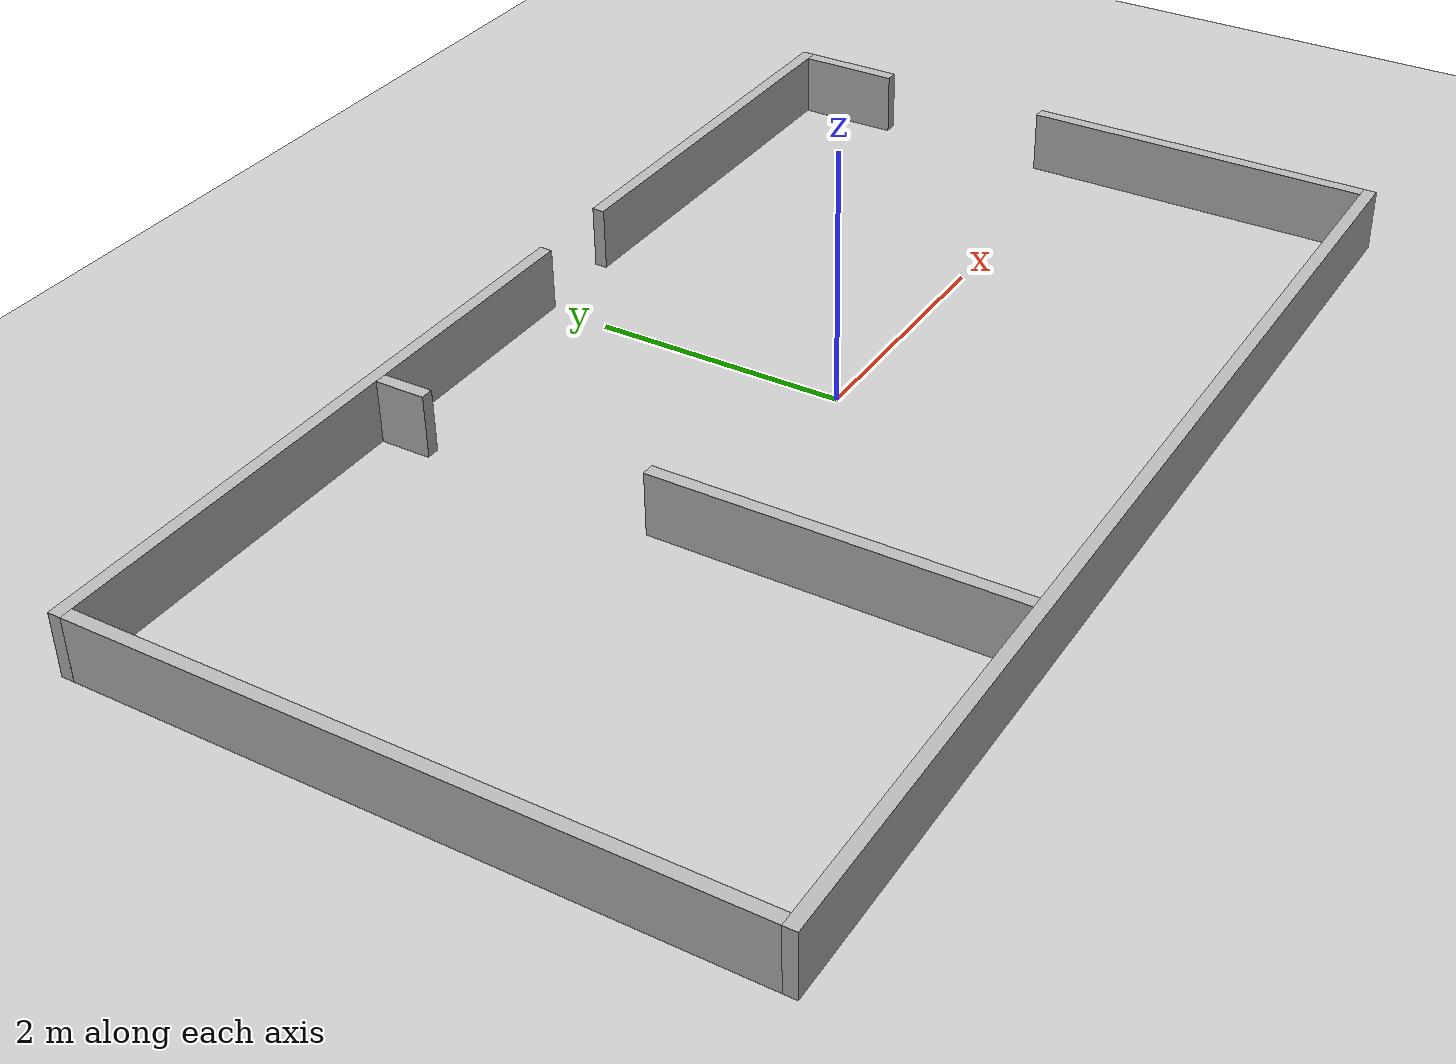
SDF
<?xml version="1.0" ?>
<sdf version="1.4">
  <world name="default">
    <include>
      <uri>model://sun</uri>
    </include>

    <physics type='ode'>
      <max_step_size>0.0002</max_step_size> <!-- time it takes per simulation step -->
      <real_time_factor>1</real_time_factor>
      <real_time_update_rate>1000</real_time_update_rate>
      <gravity>0 0 -9.8</gravity>
    </physics>

    <scene>
      <grid>false</grid>
    </scene>

    <model name='ground_plane'>
      <static>1</static>
      <link name='link'>
        <pose>-0.5 0 0 0 0 0</pose>
        <collision name='collision'>
          <geometry>
            <plane>
              <normal>0 0 1</normal>
              <size>10 5</size>
            </plane>
          </geometry>
          <surface>
            <friction>
              <ode>
                <mu>100</mu>
                <mu2>50</mu2>
              </ode>
            </friction>
            <bounce/>
            <contact>
              <ode/>
            </contact>
          </surface>
          <max_contacts>10</max_contacts>
        </collision>
        <visual name='visual'>
          <cast_shadows>0</cast_shadows>
          <geometry>
            <plane>
              <normal>0 0 1</normal>
              <size>9 5</size>
            </plane>
          </geometry>
          <material>
            <script>
              <uri>file://media/materials/scripts/gazebo.material</uri>
              <name>Gazebo/Grey</name>
            </script>
          </material>
        </visual>
        <velocity_decay>
          <linear>0</linear>
          <angular>0</angular>
        </velocity_decay>
        <self_collide>0</self_collide>
        <kinematic>0</kinematic>
        <gravity>1</gravity>
      </link>
    </model>

    <model name='walls'>
      <pose>0 0 0 0 0 0</pose>
      <link name='wall0'>
        <pose>-5 0 0.25 0 0 0</pose>
        <visual name='visual'>
          <geometry>
            <box>
              <size>0.1 5 0.5</size>
            </box>
          </geometry>
          <material>
            <script>
              <uri>file://media/materials/scripts/gazebo.material</uri>
              <name>Gazebo/Skull</name>
            </script>
          </material>
        </visual>
      </link>
      <link name='wall1a'>
        <pose>4 2.1 0.25 0 0 0</pose>
        <visual name='visual'>
          <geometry>
            <box>
              <size>0.1 0.8 0.5</size>
            </box>
          </geometry>
          <material>
            <script>
              <uri>file://media/materials/scripts/gazebo.material</uri>
              <name>Gazebo/Skull</name>
            </script>
          </material>
        </visual>
      </link>
      <link name='wall1b'>
        <pose>4 -1.1 0.25 0 0 0</pose>
        <visual name='visual'>
          <geometry>
            <box>
              <size>0.1 2.8 0.5</size>
            </box>
          </geometry>
          <material>
            <script>
              <uri>file://media/materials/scripts/gazebo.material</uri>
              <name>Gazebo/Skull</name>
            </script>
          </material>
        </visual>
      </link>
      <link name='wall2a'>
        <pose>-2.5 2.55 0.25 0 0 1.57075</pose>
        <visual name='visual'>
          <geometry>
            <box>
              <size>0.1 5.1 0.5</size>
            </box>
          </geometry>
          <material>
            <script>
              <uri>file://media/materials/scripts/gazebo.material</uri>
              <name>Gazebo/Skull</name>
            </script>
          </material>
        </visual>
      </link>
      <link name='wall2b'>
        <pose>2.4 2.55 0.25 0 0 1.57075</pose>
        <visual name='visual'>
          <geometry>
            <box>
              <size>0.1 3.3 0.5</size>
            </box>
          </geometry>
          <material>
            <script>
              <uri>file://media/materials/scripts/gazebo.material</uri>
              <name>Gazebo/Skull</name>
            </script>
          </material>
        </visual>
      </link>
      <link name='wall3'>
        <pose>-0.5 -2.55 0.25 0 0 1.57075</pose>
        <visual name='visual'>
          <geometry>
            <box>
              <size>0.1 9.1 0.5</size>
            </box>
          </geometry>
          <material>
            <script>
              <uri>file://media/materials/scripts/gazebo.material</uri>
              <name>Gazebo/Skull</name>
            </script>
          </material>
        </visual>
      </link>
      <link name='wall4a'>
        <pose>-2. -1.1 0.25 0 0 0</pose>
        <visual name='visual'>
          <geometry>
            <box>
              <size>0.1 2.8 0.5</size>
            </box>
          </geometry>
          <material>
            <script>
              <uri>file://media/materials/scripts/gazebo.material</uri>
              <name>Gazebo/Skull</name>
            </script>
          </material>
        </visual>
      </link>
      <link name='wall4b'>
        <pose>-2. 2.3 0.25 0 0 0</pose>
        <visual name='visual'>
          <geometry>
            <box>
              <size>0.1 0.4 0.5</size>
            </box>
          </geometry>
          <material>
            <script>
              <uri>file://media/materials/scripts/gazebo.material</uri>
              <name>Gazebo/Skull</name>
            </script>
          </material>
        </visual>
      </link>
    <static>1</static>
  </model>
  </world>
</sdf>
